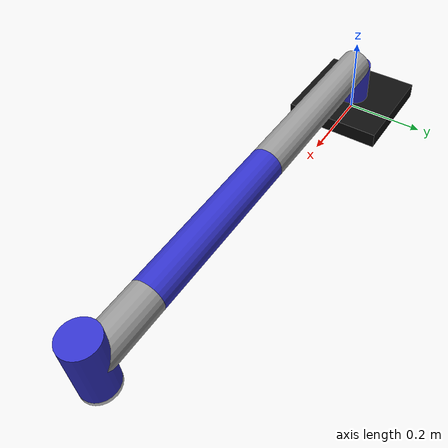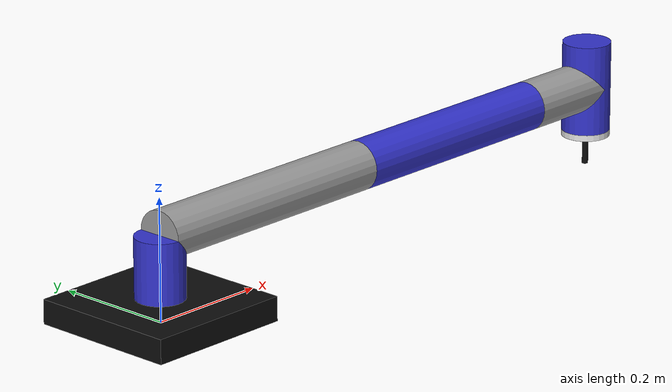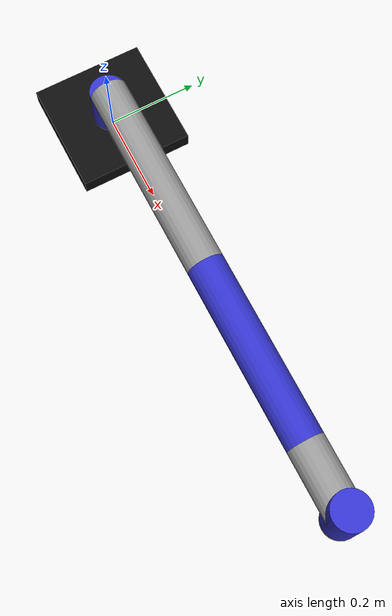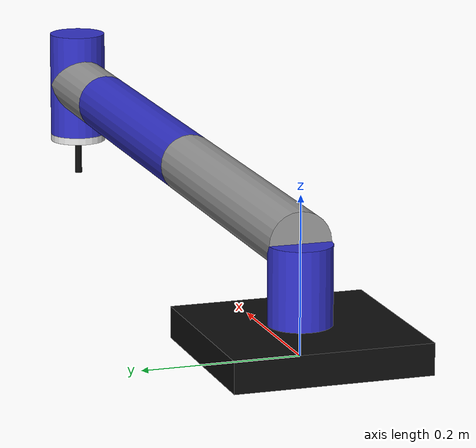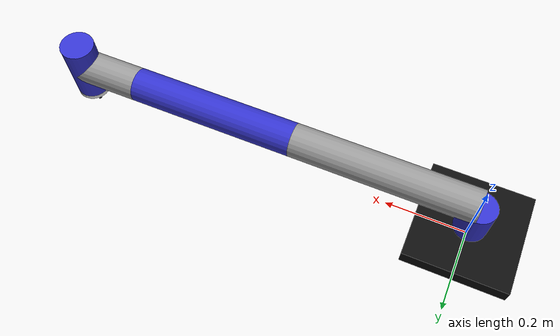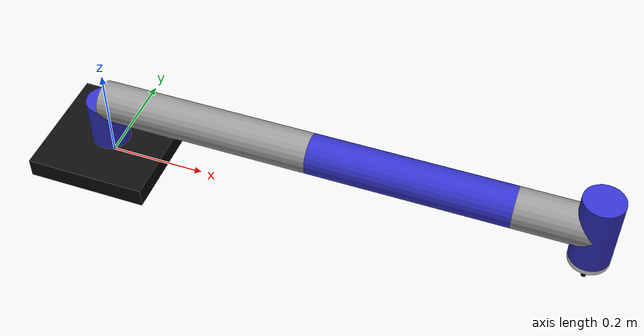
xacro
<?xml version="1.0"?>
<robot xmlns:xacro="http://www.ros.org/wiki/xacro" name="my_arm">
    <xacro:include filename="inertial.xacro" />
    <xacro:include filename="materials.xacro" />

    <!-- base -->
    <link name="base_link">
    </link>

    <joint name="base_link_to_base_joint" type="fixed">
        <parent link="base_link"/>
        <child link="base"/>
        <origin xyz="0 0 0" rpy="0 0 0"/>
    </joint>

    <!-- base -->
    <link name="base">
        <visual>
            <origin xyz="0 0 0.02" rpy="0 0 0" />
            <geometry>
                <box size="0.25 0.25 0.04" />
            </geometry>
            <material name="black" />
        </visual>
        <collision>
            <origin xyz="0 0 0.02" rpy="0 0 0" />
            <geometry>
                <box size="0.25 0.25 0.04" />
            </geometry>
        </collision>
        <xacro:box_inertial m="100.0" x="0.25" y="0.25" z="0.04" />
    </link>

    <!-- joint1 -->
    <joint name="joint1" type="revolute">
        <parent link="base"/>
        <child link="link1"/>
        <origin xyz="0 0 0.04" rpy="0 0 0"/>
        <axis xyz="0.0 0.0 1.0"/>
        <limit lower="-3.14" upper="3.14" effort="10.0" velocity="1.0"/>
        <dynamics damping="0.5" friction="0.5"/>
    </joint>

    <!-- link1 -->
    <link name="link1">
        <visual>
            <origin xyz="0 0 0.05" rpy="0 0 0" />
            <geometry>
                <cylinder length="0.1" radius="0.04" />
            </geometry>
            <material name="blue" />
        </visual>
        <collision>
            <origin xyz="0 0 0.05" rpy="0 0 0" />
            <geometry>
                <cylinder length="0.1" radius="0.04" />
            </geometry>
        </collision>
        <xacro:inertial_cylinder m="2.0" l="0.1" r="0.04"/>
    </link>

    <!-- joint2 -->
    <joint name="joint2" type="revolute">
        <parent link="link1"/>
        <child link="link2"/>
        <origin xyz="0 0 0.1" rpy="${pi/2} 0 0"/>
        <axis xyz="0.0 0.0 1.0"/>
        <limit lower="0" upper="3.14" effort="10.0" velocity="1.0"/>
        <dynamics damping="0.5" friction="0.5"/>
    </joint>

    <!-- link2 -->
    <link name="link2">
        <visual>
            <origin xyz="0.22 0 0" rpy="0 ${pi/2} 0" />
            <geometry>
                <cylinder length="0.44" radius="0.04" />
            </geometry>
            <material name="grey" />
        </visual>
        <collision>
            <origin xyz="0.22 0 0" rpy="0 ${pi/2} 0" />
            <geometry>
                <cylinder length="0.44" radius="0.04" />
            </geometry>
        </collision>
        <xacro:inertial_cylinder m="1.5" l="0.44" r="0.04" />
    </link>

    <!-- joint3 -->
    <joint name="joint3" type="revolute">
        <parent link="link2"/>
        <child link="link3"/>
        <origin xyz="0.44 0 0" rpy="${pi} 0 0"/>
        <axis xyz="0.0 0.0 1.0"/>
        <limit lower="-3.14" upper="3.14" effort="10.0" velocity="1.0"/>
        <dynamics damping="0.5" friction="0.5"/>
    </joint>

    <!-- link3 -->
    <link name="link3">
        <visual>
            <origin xyz="0.2 0 0" rpy="0 ${pi/2} 0" />
            <geometry>
                <cylinder length="0.4" radius="0.04" />
            </geometry>
            <material name="blue" />
        </visual>
        <collision>
            <origin xyz="0.2 0 0" rpy="0 ${pi/2} 0" />
            <geometry>
                <cylinder length="0.4" radius="0.04" />
            </geometry>
        </collision>
        <xacro:inertial_cylinder m="1.0" l="0.4" r="0.04" />
    </link>

    <!-- joint4 -->
    <joint name="joint4" type="revolute">
        <parent link="link3"/>
        <child link="link4"/>
        <origin xyz="0.4 0 0" rpy="0 0 0"/>
        <axis xyz="0.0 0.0 1.0"/>
        <limit lower="-3.14" upper="3.14" effort="10.0" velocity="1.0"/>
        <dynamics damping="0.5" friction="0.5"/>
    </joint>

    <!-- link4 -->
    <link name="link4">
        <visual>
            <origin xyz="0.075 0 0" rpy="0 ${pi/2} 0" />
            <geometry>
                <cylinder length="0.15" radius="0.04" />
            </geometry>
            <material name="grey" />
        </visual>
        <collision>
            <origin xyz="0.2 0 0" rpy="0 ${pi/2} 0" />
            <geometry>
                <cylinder length="0.4" radius="0.04" />
            </geometry>
        </collision>
        <xacro:inertial_cylinder m="1.0" l="0.4" r="0.04" />
    </link>

    <!-- joint5 -->
    <joint name="joint5" type="revolute">
        <parent link="link4"/>
        <child link="link5"/>
        <origin xyz="0.15 0 0" rpy="0 0 0"/>
        <axis xyz="1 0 0"/>
        <limit lower="-3.14" upper="3.14" effort="10.0" velocity="1.0"/>
        <dynamics damping="0.5" friction="0.5"/>
    </joint>

    <!-- link5 -->
    <link name="link5">
        <visual>
            <origin xyz="0.0 0 0" rpy="${pi/2} 0 0" />
            <geometry>
                <cylinder length="0.15" radius="0.04" />
            </geometry>
            <material name="blue" />
        </visual>
        <collision>
            <origin xyz="0.2 0 0" rpy="0 ${pi/2} 0" />
            <geometry>
                <cylinder length="0.4" radius="0.04" />
            </geometry>
        </collision>
        <xacro:inertial_cylinder m="1.0" l="0.4" r="0.04" />
    </link>

    <joint name="joint6" type="revolute">
        <parent link="link5"/>
        <child link="link6"/>
        <origin xyz="0 0.08 0" rpy="0 0 0"/>
        <axis xyz="0 1 0"/>
        <limit lower="-3.14" upper="3.14" effort="10.0" velocity="1.0"/>
        <dynamics damping="0.5" friction="0.5"/>
    </joint>

    <!-- link6 -->
    <link name="link6">
        <visual>
            <origin xyz="0.0 0 0" rpy="${pi/2} 0 0" />
            <geometry>
                <cylinder length="0.01" radius="0.04" />
            </geometry>
            <material name="white" />
        </visual>
        <collision>
            <origin xyz="0.2 0 0" rpy="0 ${pi/2} 0" />
            <geometry>
                <cylinder length="0.1" radius="0.04" />
            </geometry>
        </collision>
        <xacro:inertial_cylinder m="1.0" l="0.4" r="0.04" />
    </link>

    <joint name="end_joint" type="fixed">
        <parent link="link6"/>
        <child link="end_effector"/>
        <origin xyz="0 0.01 0" rpy="0 0 0"/>
    </joint>

    <!-- end effector -->
    <link name="end_effector">
        <visual>
            <origin xyz="0 0.02 0" rpy="${pi/2} 0 0" />
            <geometry>
                <cylinder length="0.05" radius="0.005" />
            </geometry>
            <material name="black" />
        </visual>
        <collision>
            <origin xyz="0.2 0 0" rpy="0 ${pi/2} 0" />
            <geometry>
                <cylinder length="0.1" radius="0.04" />
            </geometry>
        </collision>
        <xacro:inertial_cylinder m="1.0" l="0.4" r="0.04" />
    </link>

    <!-- Gazebo material settings -->
    <gazebo reference="base">
        <material>Gazebo/Black</material>
    </gazebo>

    <gazebo reference="link1">
        <material>Gazebo/Blue</material>
    </gazebo>

    <gazebo reference="link2">
        <material>Gazebo/Grey</material>
    </gazebo>

    <gazebo reference="link3">
        <material>Gazebo/Blue</material>
    </gazebo>

    <gazebo reference="link4">
        <material>Gazebo/Grey</material>
    </gazebo>

    <gazebo reference="link5">
        <material>Gazebo/Blue</material>
    </gazebo>

    <gazebo reference="link6">
        <material>Gazebo/Grey</material>
    </gazebo>

    <gazebo reference="end_effector">
        <material>Gazebo/Black</material>
    </gazebo>

</robot>

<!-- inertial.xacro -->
<robot xmlns:xacro="http://www.ros.org/wiki/xacro" name="robot">

  <!-- helper: box inertial -->
  <xacro:macro name="box_inertial" params="m x y z">
    <inertial>
      <origin xyz="0 0 0" rpy="0 0 0"/>
      <mass value="${m}"/>
      <inertia ixx="${m/12.0*(y*y+z*z)}" ixy="0" ixz="0"
               iyy="${m/12.0*(x*x+z*z)}" iyz="0"
               izz="${m/12.0*(x*x+y*y)}"/>
    </inertial>
  </xacro:macro>

  <xacro:macro name="inertial_cylinder" params="m l r">
    <inertial>
      <origin xyz="0 0 0" rpy="0 0 0"/>
      <mass value="${m}" />
      <inertia ixx="${(1/12) * m * (3*r*r + l*l)}" ixy="0.0" ixz="0.0"
              iyy="${(1/12) * m * (3*r*r + l*l)}" iyz="0.0"
              izz="${(1/2) * m * (r*r)}" />
    </inertial>
  </xacro:macro>

</robot>

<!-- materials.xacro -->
<robot xmlns:xacro="http://www.ros.org/wiki/xacro" name="robot">

    <!-- simple materials -->
    <material name="grey"><color rgba="0.6 0.6 0.6 1"/></material>
    <material name="blue"><color rgba="0.2 0.2 0.8 1"/></material>
    <material name="black"><color rgba="0.05 0.05 0.05 1"/></material>
    <material name="white"><color rgba="0.9 0.9 0.9 1"/></material>

</robot>
